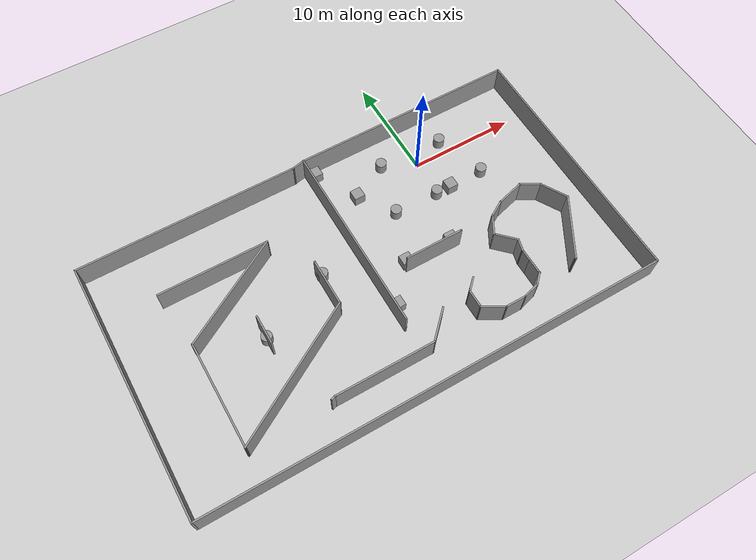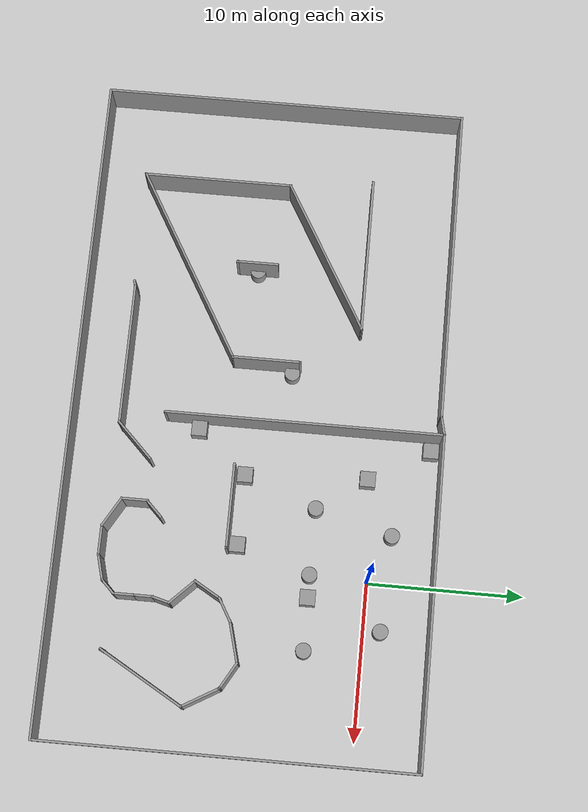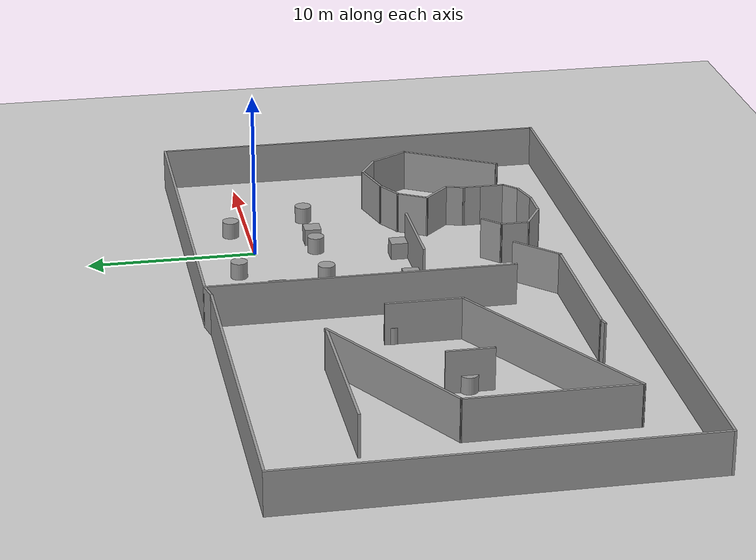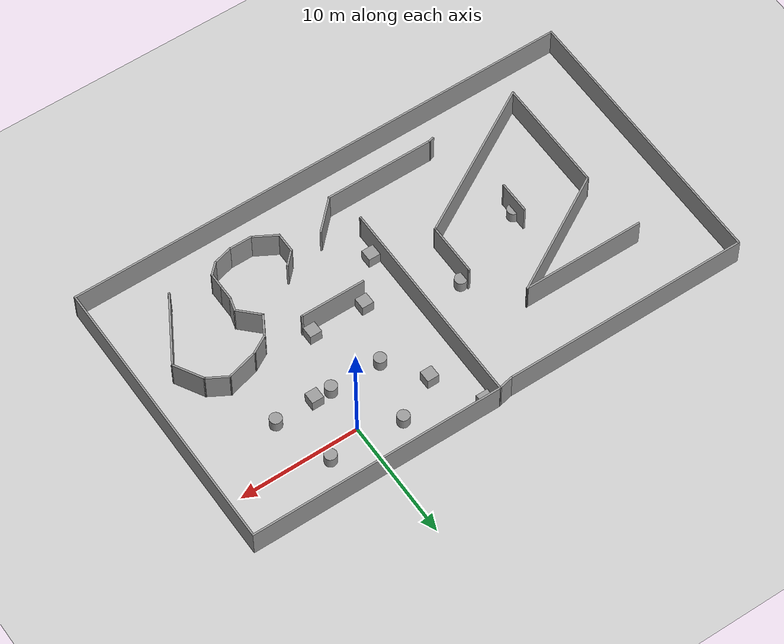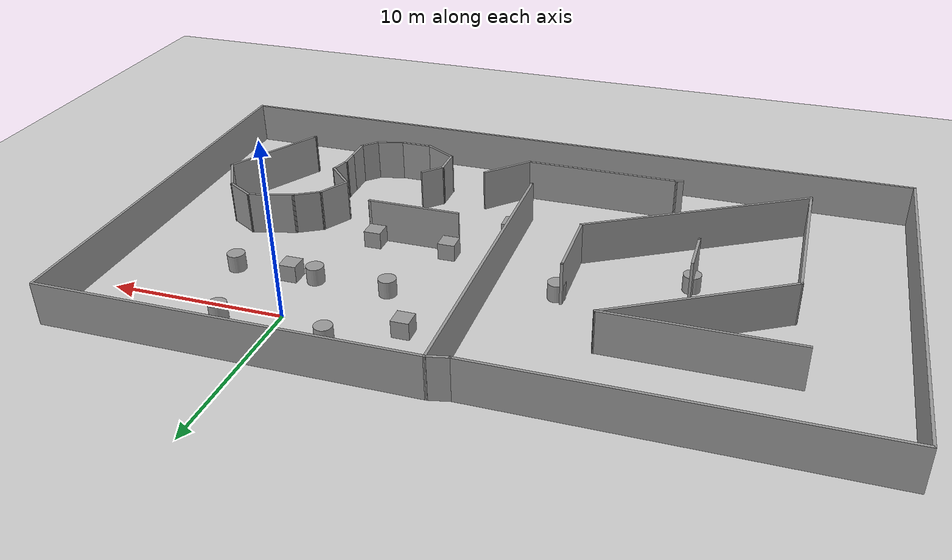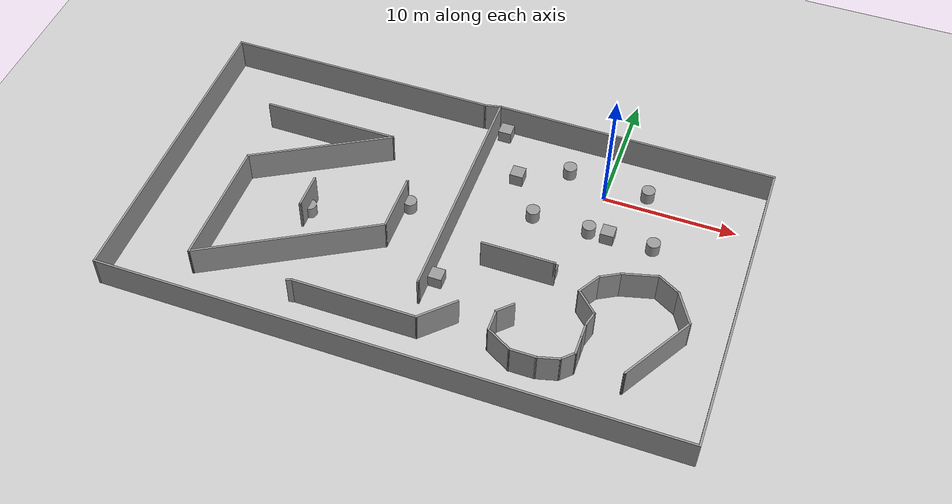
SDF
<sdf version="1.7">
 <world name="default">
  <light name="sun" type="directional">
   <pose>0 0 10 0 -0 0</pose>
   <diffuse>0.8 0.8 0.8 1</diffuse>
   <specular>0.2 0.2 0.2 1</specular>
   <attenuation>
    <range>1000</range>
    <constant>0.9</constant>
    <linear>0.01</linear>
    <quadratic>0.001</quadratic>
   </attenuation>
   <direction>-0.5 0.1 -0.9</direction>
   <spot><inner_angle>0</inner_angle><outer_angle>0</outer_angle><falloff>0</falloff></spot>
  </light>
  <model name="ground_plane">
   <static>1</static>
   <link name="link">
    <collision name="collision">
     <geometry><plane><normal>0 0 1</normal><size>100 100</size></plane></geometry>
     <surface><friction><ode><mu>100</mu><mu2>50</mu2></ode></friction></surface>
    </collision>
    <visual name="visual">
     <cast_shadows>0</cast_shadows>
     <geometry><plane><normal>0 0 1</normal><size>100 100</size></plane></geometry>
     <material>
      <script><uri>file://media/materials/scripts/gazebo.material</uri><name>Gazebo/Grey</name></script>
     </material>
    </visual>
   </link>
  </model>
  <gravity>0 0 -9.8</gravity>
  <magnetic_field>6e-06 2.3e-05 -4.2e-05</magnetic_field>
  <atmosphere type="adiabatic"/>
  <physics type="ode">
   <max_step_size>0.001</max_step_size>
   <real_time_factor>1</real_time_factor>
   <real_time_update_rate>1000</real_time_update_rate>
  </physics>
  <scene><ambient>0.4 0.4 0.4 1</ambient><background>0.7 0.7 0.7 1</background><shadows>1</shadows></scene>
  <audio><device>default</device></audio>
  <spherical_coordinates>
   <surface_model>EARTH_WGS84</surface_model>
   <latitude_deg>0</latitude_deg>
   <longitude_deg>0</longitude_deg>
   <elevation>0</elevation>
   <heading_deg>0</heading_deg>
  </spherical_coordinates>
  <light name="user_directional_light_0" type="directional">
   <pose>2.19345 2.7816 1 0 -0 0</pose>
   <diffuse>0.5 0.5 0.5 1</diffuse>
   <specular>0.1 0.1 0.1 1</specular>
   <direction>0.1 0.1 -0.9</direction>
   <attenuation>
    <range>20</range>
    <constant>0.5</constant>
    <linear>0.01</linear>
    <quadratic>0.001</quadratic>
   </attenuation>
   <spot><inner_angle>0</inner_angle><outer_angle>0</outer_angle><falloff>0</falloff></spot>
  </light>
  <light name="user_point_light_0" type="point">
   <pose>0.00602 0.042738 1 0 -0 0</pose>
   <diffuse>0.5 0.5 0.5 1</diffuse>
   <specular>0.1 0.1 0.1 1</specular>
   <attenuation>
    <range>20</range>
    <constant>0.5</constant>
    <linear>0.01</linear>
    <quadratic>0.001</quadratic>
   </attenuation>
   <cast_shadows>0</cast_shadows>
   <direction>0 0 -1</direction>
   <spot><inner_angle>0</inner_angle><outer_angle>0</outer_angle><falloff>0</falloff></spot>
  </light>
  <light name="user_directional_light_1" type="directional">
   <pose>8.20427 3.3882 1 0 -0 0</pose>
   <diffuse>0.5 0.5 0.5 1</diffuse>
   <specular>0.1 0.1 0.1 1</specular>
   <direction>0.1 0.1 -0.9</direction>
   <attenuation>
    <range>20</range>
    <constant>0.5</constant>
    <linear>0.01</linear>
    <quadratic>0.001</quadratic>
   </attenuation>
   <spot><inner_angle>0</inner_angle><outer_angle>0</outer_angle><falloff>0</falloff></spot>
  </light>
  <light name="user_directional_light_2" type="directional">
   <pose>-4.44235 2.83674 1 0 -0 0</pose>
   <diffuse>0.5 0.5 0.5 1</diffuse>
   <specular>0.1 0.1 0.1 1</specular>
   <direction>0.1 0.1 -0.9</direction>
   <attenuation>
    <range>20</range>
    <constant>0.5</constant>
    <linear>0.01</linear>
    <quadratic>0.001</quadratic>
   </attenuation>
   <spot><inner_angle>0</inner_angle><outer_angle>0</outer_angle><falloff>0</falloff></spot>
  </light>
  <light name="user_directional_light_3" type="directional">
   <pose>2.24863 -3.56007 1 0 -0 0</pose>
   <diffuse>0.5 0.5 0.5 1</diffuse>
   <specular>0.1 0.1 0.1 1</specular>
   <direction>0.1 0.1 -0.9</direction>
   <attenuation>
    <range>20</range>
    <constant>0.5</constant>
    <linear>0.01</linear>
    <quadratic>0.001</quadratic>
   </attenuation>
   <spot><inner_angle>0</inner_angle><outer_angle>0</outer_angle><falloff>0</falloff></spot>
  </light>
  <light name="user_directional_light_4" type="directional">
   <pose>2.43241 9.1233 1 0 -0 0</pose>
   <diffuse>0.5 0.5 0.5 1</diffuse>
   <specular>0.1 0.1 0.1 1</specular>
   <direction>0.1 0.1 -0.9</direction>
   <attenuation>
    <range>20</range>
    <constant>0.5</constant>
    <linear>0.01</linear>
    <quadratic>0.001</quadratic>
   </attenuation>
   <spot><inner_angle>0</inner_angle><outer_angle>0</outer_angle><falloff>0</falloff></spot>
  </light>
  <model name="Untitled">
   <pose>-9.90594 -7.76724 0 0 -0 0</pose>
   <link name="Wall_1">
    <collision name="Wall_1_Collision">
     <geometry><box><size>21.25 0.15 2.5</size></box></geometry>
     <pose>0 0 1.25 0 -0 0</pose>
    </collision>
    <visual name="Wall_1_Visual">
     <pose>0 0 1.25 0 -0 0</pose>
     <geometry><box><size>21.25 0.15 2.5</size></box></geometry>
     <material>
      <script><uri>file://media/materials/scripts/gazebo.material</uri><name>Gazebo/Grey</name></script>
      <ambient>1 1 1 1</ambient>
     </material>
     <meta><layer>0</layer></meta>
    </visual>
    <pose>10.875 11.9179 0 0 -0 0</pose>
   </link>
   <link name="Wall_11">
    <collision name="Wall_11_Collision">
     <geometry><box><size>10.25 0.15 2.5</size></box></geometry>
     <pose>0 0 1.25 0 -0 0</pose>
    </collision>
    <visual name="Wall_11_Visual">
     <pose>0 0 1.25 0 -0 0</pose>
     <geometry><box><size>10.25 0.15 2.5</size></box></geometry>
     <material>
      <script><uri>file://media/materials/scripts/gazebo.material</uri><name>Gazebo/Grey</name></script>
      <ambient>1 1 1 1</ambient>
     </material>
     <meta><layer>0</layer></meta>
    </visual>
    <pose>-11.3016 6.11885 0 0 -0 0</pose>
   </link>
   <link name="Wall_12">
    <collision name="Wall_12_Collision">
     <geometry><box><size>11 0.15 2.5</size></box></geometry>
     <pose>0 0 1.25 0 -0 0</pose>
    </collision>
    <visual name="Wall_12_Visual">
     <pose>0 0 1.25 0 -0 0</pose>
     <geometry><box><size>11 0.15 2.5</size></box></geometry>
     <material>
      <script><uri>file://media/materials/scripts/gazebo.material</uri><name>Gazebo/Grey</name></script>
      <ambient>1 1 1 1</ambient>
     </material>
     <meta><layer>0</layer></meta>
    </visual>
    <pose>-10.9498 3.40634 0 0 -0 -2.61799</pose>
   </link>
   <link name="Wall_13">
    <collision name="Wall_13_Collision">
     <geometry><box><size>9.75 0.15 2.5</size></box></geometry>
     <pose>0 0 1.25 0 -0 0</pose>
    </collision>
    <visual name="Wall_13_Visual">
     <pose>0 0 1.25 0 -0 0</pose>
     <geometry><box><size>9.75 0.15 2.5</size></box></geometry>
     <material>
      <script><uri>file://media/materials/scripts/gazebo.material</uri><name>Gazebo/Grey</name></script>
      <ambient>1 1 1 1</ambient>
     </material>
     <meta><layer>0</layer></meta>
    </visual>
    <pose>-15.6479 -4.10616 0 0 -0 -1.5708</pose>
   </link>
   <link name="Wall_14">
    <collision name="Wall_14_Collision">
     <geometry><box><size>14 0.15 2.5</size></box></geometry>
     <pose>0 0 1.25 0 -0 0</pose>
    </collision>
    <visual name="Wall_14_Visual">
     <pose>0 0 1.25 0 -0 0</pose>
     <geometry><box><size>14 0.15 2.5</size></box></geometry>
     <material>
      <script><uri>file://media/materials/scripts/gazebo.material</uri><name>Gazebo/Grey</name></script>
      <ambient>1 1 1 1</ambient>
     </material>
     <meta><layer>0</layer></meta>
    </visual>
    <pose>-9.65072 -5.44365 0 0 -0 0.523599</pose>
   </link>
   <link name="Wall_15">
    <collision name="Wall_15_Collision">
     <geometry><box><size>4.5 0.15 2.5</size></box></geometry>
     <pose>0 0 1.25 0 -0 0</pose>
    </collision>
    <visual name="Wall_15_Visual">
     <pose>0 0 1.25 0 -0 0</pose>
     <geometry><box><size>4.5 0.15 2.5</size></box></geometry>
     <material>
      <script><uri>file://media/materials/scripts/gazebo.material</uri><name>Gazebo/Grey</name></script>
      <ambient>1 1 1 1</ambient>
     </material>
     <meta><layer>0</layer></meta>
    </visual>
    <pose>-3.65349 0.193846 0 0 -0 1.5708</pose>
   </link>
   <link name="Wall_16">
    <collision name="Wall_16_Collision">
     <geometry><box><size>0.16 0.15 2.5</size></box></geometry>
     <pose>0 0 1.25 0 -0 0</pose>
    </collision>
    <visual name="Wall_16_Visual">
     <pose>0 0 1.25 0 -0 0</pose>
     <geometry><box><size>0.16 0.15 2.5</size></box></geometry>
     <material>
      <script><uri>file://media/materials/scripts/gazebo.material</uri><name>Gazebo/Grey</name></script>
      <ambient>1 1 1 1</ambient>
     </material>
     <meta><layer>0</layer></meta>
    </visual>
    <pose>-3.64849 2.36885 0 0 -0 0</pose>
   </link>
   <link name="Wall_18">
    <collision name="Wall_18_Collision">
     <geometry><box><size>2.75 0.15 2.5</size></box></geometry>
     <pose>0 0 1.25 0 -0 0</pose>
    </collision>
    <visual name="Wall_18_Visual">
     <pose>0 0 1.25 0 -0 0</pose>
     <geometry><box><size>2.75 0.15 2.5</size></box></geometry>
     <material>
      <script><uri>file://media/materials/scripts/gazebo.material</uri><name>Gazebo/Grey</name></script>
      <ambient>1 1 1 1</ambient>
     </material>
     <meta><layer>0</layer></meta>
    </visual>
    <pose>-10.11 -0.992237 0 0 -0 -1.5708</pose>
   </link>
   <link name="Wall_19">
    <collision name="Wall_19_Collision">
     <geometry><box><size>0.15 0.15 2.5</size></box></geometry>
     <pose>0 0 1.25 0 -0 0</pose>
    </collision>
    <visual name="Wall_19_Visual">
     <pose>0 0 1.25 0 -0 0</pose>
     <geometry><box><size>0.15 0.15 2.5</size></box></geometry>
     <material>
      <script><uri>file://media/materials/scripts/gazebo.material</uri><name>Gazebo/Grey</name></script>
      <ambient>1 1 1 1</ambient>
     </material>
     <meta><layer>0</layer></meta>
    </visual>
    <pose>-10.11 -2.29224 0 0 -0 0</pose>
   </link>
   <link name="Wall_2">
    <collision name="Wall_2_Collision">
     <geometry><box><size>24 0.15 2.5</size></box></geometry>
     <pose>0 0 1.25 0 -0 0</pose>
    </collision>
    <visual name="Wall_2_Visual">
     <pose>0 0 1.25 0 -0 0</pose>
     <geometry><box><size>24 0.15 2.5</size></box></geometry>
     <material>
      <script><uri>file://media/materials/scripts/gazebo.material</uri><name>Gazebo/Grey</name></script>
      <ambient>1 1 1 1</ambient>
     </material>
     <meta><layer>0</layer></meta>
    </visual>
    <pose>21.425 -0.007109 0 0 -0 -1.5708</pose>
   </link>
   <link name="Wall_21">
    <collision name="Wall_21_Collision">
     <geometry><box><size>1.5 0.15 2.5</size></box></geometry>
     <pose>0 0 1.25 0 -0 0</pose>
    </collision>
    <visual name="Wall_21_Visual">
     <pose>0 0 1.25 0 -0 0</pose>
     <geometry><box><size>1.5 0.15 2.5</size></box></geometry>
     <material>
      <script><uri>file://media/materials/scripts/gazebo.material</uri><name>Gazebo/Grey</name></script>
      <ambient>1 1 1 1</ambient>
     </material>
     <meta><layer>0</layer></meta>
    </visual>
    <pose>6.63069 -5.98062 0 0 -0 -2.35619</pose>
   </link>
   <link name="Wall_22">
    <collision name="Wall_22_Collision">
     <geometry><box><size>1.75 0.15 2.5</size></box></geometry>
     <pose>0 0 1.25 0 -0 0</pose>
    </collision>
    <visual name="Wall_22_Visual">
     <pose>0 0 1.25 0 -0 0</pose>
     <geometry><box><size>1.75 0.15 2.5</size></box></geometry>
     <material>
      <script><uri>file://media/materials/scripts/gazebo.material</uri><name>Gazebo/Grey</name></script>
      <ambient>1 1 1 1</ambient>
     </material>
     <meta><layer>0</layer></meta>
    </visual>
    <pose>6.15339 -7.25791 0 0 -0 -1.5708</pose>
   </link>
   <link name="Wall_23">
    <collision name="Wall_23_Collision">
     <geometry><box><size>2.25 0.15 2.5</size></box></geometry>
     <pose>0 0 1.25 0 -0 0</pose>
    </collision>
    <visual name="Wall_23_Visual">
     <pose>0 0 1.25 0 -0 0</pose>
     <geometry><box><size>2.25 0.15 2.5</size></box></geometry>
     <material>
      <script><uri>file://media/materials/scripts/gazebo.material</uri><name>Gazebo/Grey</name></script>
      <ambient>1 1 1 1</ambient>
     </material>
     <meta><layer>0</layer></meta>
    </visual>
    <pose>7.06272 -8.58291 0 0 -0 -0.523599</pose>
   </link>
   <link name="Wall_24">
    <collision name="Wall_24_Collision">
     <geometry><box><size>2 0.15 2.5</size></box></geometry>
     <pose>0 0 1.25 0 -0 0</pose>
    </collision>
    <visual name="Wall_24_Visual">
     <pose>0 0 1.25 0 -0 0</pose>
     <geometry><box><size>2 0.15 2.5</size></box></geometry>
     <material>
      <script><uri>file://media/materials/scripts/gazebo.material</uri><name>Gazebo/Grey</name></script>
      <ambient>1 1 1 1</ambient>
     </material>
     <meta><layer>0</layer></meta>
    </visual>
    <pose>8.89705 -9.10791 0 0 -0 0</pose>
   </link>
   <link name="Wall_25">
    <collision name="Wall_25_Collision">
     <geometry><box><size>1.75 0.15 2.5</size></box></geometry>
     <pose>0 0 1.25 0 -0 0</pose>
    </collision>
    <visual name="Wall_25_Visual">
     <pose>0 0 1.25 0 -0 0</pose>
     <geometry><box><size>1.75 0.15 2.5</size></box></geometry>
     <material>
      <script><uri>file://media/materials/scripts/gazebo.material</uri><name>Gazebo/Grey</name></script>
      <ambient>1 1 1 1</ambient>
     </material>
     <meta><layer>0</layer></meta>
    </visual>
    <pose>10.5948 -8.90086 0 0 -0 0.261799</pose>
   </link>
   <link name="Wall_26">
    <collision name="Wall_26_Collision">
     <geometry><box><size>1.25 0.15 2.5</size></box></geometry>
     <pose>0 0 1.25 0 -0 0</pose>
    </collision>
    <visual name="Wall_26_Visual">
     <pose>0 0 1.25 0 -0 0</pose>
     <geometry><box><size>1.25 0.15 2.5</size></box></geometry>
     <material>
      <script><uri>file://media/materials/scripts/gazebo.material</uri><name>Gazebo/Grey</name></script>
      <ambient>1 1 1 1</ambient>
     </material>
     <meta><layer>0</layer></meta>
    </visual>
    <pose>11.7564 -8.3049 0 0 -0 0.785398</pose>
   </link>
   <link name="Wall_27">
    <collision name="Wall_27_Collision">
     <geometry><box><size>1.5 0.15 2.5</size></box></geometry>
     <pose>0 0 1.25 0 -0 0</pose>
    </collision>
    <visual name="Wall_27_Visual">
     <pose>0 0 1.25 0 -0 0</pose>
     <geometry><box><size>1.5 0.15 2.5</size></box></geometry>
     <material>
      <script><uri>file://media/materials/scripts/gazebo.material</uri><name>Gazebo/Grey</name></script>
      <ambient>1 1 1 1</ambient>
     </material>
     <meta><layer>0</layer></meta>
    </visual>
    <pose>12.1453 -7.24099 0 0 -0 1.5708</pose>
   </link>
   <link name="Wall_28">
    <collision name="Wall_28_Collision">
     <geometry><box><size>1.25 0.15 2.5</size></box></geometry>
     <pose>0 0 1.25 0 -0 0</pose>
    </collision>
    <visual name="Wall_28_Visual">
     <pose>0 0 1.25 0 -0 0</pose>
     <geometry><box><size>1.25 0.15 2.5</size></box></geometry>
     <material>
      <script><uri>file://media/materials/scripts/gazebo.material</uri><name>Gazebo/Grey</name></script>
      <ambient>1 1 1 1</ambient>
     </material>
     <meta><layer>0</layer></meta>
    </visual>
    <pose>12.1453 -6.01599 0 0 -0 1.5708</pose>
   </link>
   <link name="Wall_29">
    <collision name="Wall_29_Collision">
     <geometry><box><size>1.25 0.15 2.5</size></box></geometry>
     <pose>0 0 1.25 0 -0 0</pose>
    </collision>
    <visual name="Wall_29_Visual">
     <pose>0 0 1.25 0 -0 0</pose>
     <geometry><box><size>1.25 0.15 2.5</size></box></geometry>
     <material>
      <script><uri>file://media/materials/scripts/gazebo.material</uri><name>Gazebo/Grey</name></script>
      <ambient>1 1 1 1</ambient>
     </material>
     <meta><layer>0</layer></meta>
    </visual>
    <pose>12.2877 -4.93473 0 0 -0 1.309</pose>
   </link>
   <link name="Wall_3">
    <collision name="Wall_3_Collision">
     <geometry><box><size>43 0.15 2.5</size></box></geometry>
     <pose>0 0 1.25 0 -0 0</pose>
    </collision>
    <visual name="Wall_3_Visual">
     <pose>0 0 1.25 0 -0 0</pose>
     <geometry><box><size>43 0.15 2.5</size></box></geometry>
     <material>
      <script><uri>file://media/materials/scripts/gazebo.material</uri><name>Gazebo/Grey</name></script>
      <ambient>1 1 1 1</ambient>
     </material>
     <meta><layer>0</layer></meta>
    </visual>
    <pose>-0 -11.9321 0 0 -0 3.14159</pose>
   </link>
   <link name="Wall_30">
    <collision name="Wall_30_Collision">
     <geometry><box><size>2.25 0.15 2.5</size></box></geometry>
     <pose>0 0 1.25 0 -0 0</pose>
    </collision>
    <visual name="Wall_30_Visual">
     <pose>0 0 1.25 0 -0 0</pose>
     <geometry><box><size>2.25 0.15 2.5</size></box></geometry>
     <material>
      <script><uri>file://media/materials/scripts/gazebo.material</uri><name>Gazebo/Grey</name></script>
      <ambient>1 1 1 1</ambient>
     </material>
     <meta><layer>0</layer></meta>
    </visual>
    <pose>11.6876 -3.661 0 0 -0 2.35619</pose>
   </link>
   <link name="Wall_31">
    <collision name="Wall_31_Collision">
     <geometry><box><size>2 0.15 2.5</size></box></geometry>
     <pose>0 0 1.25 0 -0 0</pose>
    </collision>
    <visual name="Wall_31_Visual">
     <pose>0 0 1.25 0 -0 0</pose>
     <geometry><box><size>2 0.15 2.5</size></box></geometry>
     <material>
      <script><uri>file://media/materials/scripts/gazebo.material</uri><name>Gazebo/Grey</name></script>
      <ambient>1 1 1 1</ambient>
     </material>
     <meta><layer>0</layer></meta>
    </visual>
    <pose>11.4076 -2.11747 0 0 -0 1.0472</pose>
   </link>
   <link name="Wall_32">
    <collision name="Wall_32_Collision">
     <geometry><box><size>1.75 0.15 2.5</size></box></geometry>
     <pose>0 0 1.25 0 -0 0</pose>
    </collision>
    <visual name="Wall_32_Visual">
     <pose>0 0 1.25 0 -0 0</pose>
     <geometry><box><size>1.75 0.15 2.5</size></box></geometry>
     <material>
      <script><uri>file://media/materials/scripts/gazebo.material</uri><name>Gazebo/Grey</name></script>
      <ambient>1 1 1 1</ambient>
     </material>
     <meta><layer>0</layer></meta>
    </visual>
    <pose>12.5629 -0.916396 0 0 -0 0.523599</pose>
   </link>
   <link name="Wall_33">
    <collision name="Wall_33_Collision">
     <geometry><box><size>2.75 0.15 2.5</size></box></geometry>
     <pose>0 0 1.25 0 -0 0</pose>
    </collision>
    <visual name="Wall_33_Visual">
     <pose>0 0 1.25 0 -0 0</pose>
     <geometry><box><size>2.75 0.15 2.5</size></box></geometry>
     <material>
      <script><uri>file://media/materials/scripts/gazebo.material</uri><name>Gazebo/Grey</name></script>
      <ambient>1 1 1 1</ambient>
     </material>
     <meta><layer>0</layer></meta>
    </visual>
    <pose>14.5115 -0.179932 0 0 -0 0.261799</pose>
   </link>
   <link name="Wall_34">
    <collision name="Wall_34_Collision">
     <geometry><box><size>2 0.15 2.5</size></box></geometry>
     <pose>0 0 1.25 0 -0 0</pose>
    </collision>
    <visual name="Wall_34_Visual">
     <pose>0 0 1.25 0 -0 0</pose>
     <geometry><box><size>2 0.15 2.5</size></box></geometry>
     <material>
      <script><uri>file://media/materials/scripts/gazebo.material</uri><name>Gazebo/Grey</name></script>
      <ambient>1 1 1 1</ambient>
     </material>
     <meta><layer>0</layer></meta>
    </visual>
    <pose>16.5682 -0.305967 0 0 -0 -0.523599</pose>
   </link>
   <link name="Wall_35">
    <collision name="Wall_35_Collision">
     <geometry><box><size>2.75 0.15 2.5</size></box></geometry>
     <pose>0 0 1.25 0 -0 0</pose>
    </collision>
    <visual name="Wall_35_Visual">
     <pose>0 0 1.25 0 -0 0</pose>
     <geometry><box><size>2.75 0.15 2.5</size></box></geometry>
     <material>
      <script><uri>file://media/materials/scripts/gazebo.material</uri><name>Gazebo/Grey</name></script>
      <ambient>1 1 1 1</ambient>
     </material>
     <meta><layer>0</layer></meta>
    </visual>
    <pose>18.0193 -1.8943 0 0 -0 -1.0472</pose>
   </link>
   <link name="Wall_36">
    <collision name="Wall_36_Collision">
     <geometry><box><size>6.25 0.15 2.5</size></box></geometry>
     <pose>0 0 1.25 0 -0 0</pose>
    </collision>
    <visual name="Wall_36_Visual">
     <pose>0 0 1.25 0 -0 0</pose>
     <geometry><box><size>6.25 0.15 2.5</size></box></geometry>
     <material>
      <script><uri>file://media/materials/scripts/gazebo.material</uri><name>Gazebo/Grey</name></script>
      <ambient>1 1 1 1</ambient>
     </material>
     <meta><layer>0</layer></meta>
    </visual>
    <pose>17.1443 -5.66151 0 0 -0 -2.0944</pose>
   </link>
   <link name="Wall_37">
    <collision name="Wall_37_Collision">
     <geometry><box><size>0.16 0.15 2.5</size></box></geometry>
     <pose>0 0 1.25 0 -0 0</pose>
    </collision>
    <visual name="Wall_37_Visual">
     <pose>0 0 1.25 0 -0 0</pose>
     <geometry><box><size>0.16 0.15 2.5</size></box></geometry>
     <material>
      <script><uri>file://media/materials/scripts/gazebo.material</uri><name>Gazebo/Grey</name></script>
      <ambient>1 1 1 1</ambient>
     </material>
     <meta><layer>0</layer></meta>
    </visual>
    <pose>15.6243 -8.30289 0 0 -0 0</pose>
   </link>
   <link name="Wall_39">
    <collision name="Wall_39_Collision">
     <geometry><box><size>5.5 0.15 2.5</size></box></geometry>
     <pose>0 0 1.25 0 -0 0</pose>
    </collision>
    <visual name="Wall_39_Visual">
     <pose>0 0 1.25 0 -0 0</pose>
     <geometry><box><size>5.5 0.15 2.5</size></box></geometry>
     <material>
      <script><uri>file://media/materials/scripts/gazebo.material</uri><name>Gazebo/Grey</name></script>
      <ambient>1 1 1 1</ambient>
     </material>
     <meta><layer>0</layer></meta>
    </visual>
    <pose>6.01655 -1.19881 0 0 -0 0</pose>
   </link>
   <link name="Wall_4">
    <collision name="Wall_4_Collision">
     <geometry><box><size>23.75 0.15 2.5</size></box></geometry>
     <pose>0 0 1.25 0 -0 0</pose>
    </collision>
    <visual name="Wall_4_Visual">
     <pose>0 0 1.25 0 -0 0</pose>
     <geometry><box><size>23.75 0.15 2.5</size></box></geometry>
     <material>
      <script><uri>file://media/materials/scripts/gazebo.material</uri><name>Gazebo/Grey</name></script>
      <ambient>1 1 1 1</ambient>
     </material>
     <meta><layer>0</layer></meta>
    </visual>
    <pose>-21.425 -0.132109 0 0 -0 1.5708</pose>
   </link>
   <link name="Wall_40">
    <collision name="Wall_40_Collision">
     <geometry><box><size>0.15 0.15 2.5</size></box></geometry>
     <pose>0 0 1.25 0 -0 0</pose>
    </collision>
    <visual name="Wall_40_Visual">
     <pose>0 0 1.25 0 -0 0</pose>
     <geometry><box><size>0.15 0.15 2.5</size></box></geometry>
     <material>
      <script><uri>file://media/materials/scripts/gazebo.material</uri><name>Gazebo/Grey</name></script>
      <ambient>1 1 1 1</ambient>
     </material>
     <meta><layer>0</layer></meta>
    </visual>
    <pose>8.69155 -1.19881 0 0 -0 0</pose>
   </link>
   <link name="Wall_42">
    <collision name="Wall_42_Collision">
     <geometry><box><size>3.25 0.15 2.5</size></box></geometry>
     <pose>0 0 1.25 0 -0 0</pose>
    </collision>
    <visual name="Wall_42_Visual">
     <pose>0 0 1.25 0 -0 0</pose>
     <geometry><box><size>3.25 0.15 2.5</size></box></geometry>
     <material>
      <script><uri>file://media/materials/scripts/gazebo.material</uri><name>Gazebo/Grey</name></script>
      <ambient>1 1 1 1</ambient>
     </material>
     <meta><layer>0</layer></meta>
    </visual>
    <pose>2.35314 -7.67546 0 0 -0 -2.35619</pose>
   </link>
   <link name="Wall_43">
    <collision name="Wall_43_Collision">
     <geometry><box><size>9.25 0.15 2.5</size></box></geometry>
     <pose>0 0 1.25 0 -0 0</pose>
    </collision>
    <visual name="Wall_43_Visual">
     <pose>0 0 1.25 0 -0 0</pose>
     <geometry><box><size>9.25 0.15 2.5</size></box></geometry>
     <material>
      <script><uri>file://media/materials/scripts/gazebo.material</uri><name>Gazebo/Grey</name></script>
      <ambient>1 1 1 1</ambient>
     </material>
     <meta><layer>0</layer></meta>
    </visual>
    <pose>-3.29287 -8.77148 0 0 -0 3.14159</pose>
   </link>
   <link name="Wall_44">
    <collision name="Wall_44_Collision">
     <geometry><box><size>0.5 0.15 2.5</size></box></geometry>
     <pose>0 0 1.25 0 -0 0</pose>
    </collision>
    <visual name="Wall_44_Visual">
     <pose>0 0 1.25 0 -0 0</pose>
     <geometry><box><size>0.5 0.15 2.5</size></box></geometry>
     <material>
      <script><uri>file://media/materials/scripts/gazebo.material</uri><name>Gazebo/Grey</name></script>
      <ambient>1 1 1 1</ambient>
     </material>
     <meta><layer>0</layer></meta>
    </visual>
    <pose>-8.01191 -8.81677 0 0 -0 -2.87979</pose>
   </link>
   <link name="Wall_5">
    <collision name="Wall_5_Collision">
     <geometry><box><size>20.75 0.15 2.5</size></box></geometry>
     <pose>0 0 1.25 0 -0 0</pose>
    </collision>
    <visual name="Wall_5_Visual">
     <pose>0 0 1.25 0 -0 0</pose>
     <geometry><box><size>20.75 0.15 2.5</size></box></geometry>
     <material>
      <script><uri>file://media/materials/scripts/gazebo.material</uri><name>Gazebo/Grey</name></script>
      <ambient>1 1 1 1</ambient>
     </material>
     <meta><layer>0</layer></meta>
    </visual>
    <pose>-11.125 11.6679 0 0 -0 0</pose>
   </link>
   <link name="Wall_6">
    <collision name="Wall_6_Collision">
     <geometry><box><size>1.32686 0.15 2.5</size></box></geometry>
     <pose>0 0 1.25 0 -0 0</pose>
    </collision>
    <visual name="Wall_6_Visual">
     <pose>0 0 1.25 0 -0 0</pose>
     <geometry><box><size>1.32686 0.15 2.5</size></box></geometry>
     <material>
      <script><uri>file://media/materials/scripts/gazebo.material</uri><name>Gazebo/Grey</name></script>
      <ambient>1 1 1 1</ambient>
     </material>
     <meta><layer>0</layer></meta>
    </visual>
    <pose>-0.25 11.7929 0 0 -0 0.214061</pose>
   </link>
   <link name="Wall_7">
    <collision name="Wall_7_Collision">
     <geometry><box><size>18 0.15 2.5</size></box></geometry>
     <pose>0 0 1.25 0 -0 0</pose>
    </collision>
    <visual name="Wall_7_Visual">
     <pose>0 0 1.25 0 -0 0</pose>
     <geometry><box><size>18 0.15 2.5</size></box></geometry>
     <material>
      <script><uri>file://media/materials/scripts/gazebo.material</uri><name>Gazebo/Grey</name></script>
      <ambient>1 1 1 1</ambient>
     </material>
     <meta><layer>0</layer></meta>
    </visual>
    <pose>0.324999 2.99289 0 0 -0 -1.5708</pose>
   </link>
   <link name="Wall_8">
    <collision name="Wall_8_Collision">
     <geometry><box><size>0.16 0.15 2.5</size></box></geometry>
     <pose>0 0 1.25 0 -0 0</pose>
    </collision>
    <visual name="Wall_8_Visual">
     <pose>0 0 1.25 0 -0 0</pose>
     <geometry><box><size>0.16 0.15 2.5</size></box></geometry>
     <material>
      <script><uri>file://media/materials/scripts/gazebo.material</uri><name>Gazebo/Grey</name></script>
      <ambient>1 1 1 1</ambient>
     </material>
     <meta><layer>0</layer></meta>
    </visual>
    <pose>0.329999 -5.93211 0 0 -0 0</pose>
   </link>
   <static>1</static>
  </model>
  <model name="unit_cylinder">
   <pose>-4.42742 -3.60019 0.499998 3e-06 -3e-06 0</pose>
   <link name="link">
    <inertial>
     <mass>1</mass>
     <inertia><ixx>0.145833</ixx><ixy>0</ixy><ixz>0</ixz><iyy>0.145833</iyy><iyz>0</iyz><izz>0.125</izz></inertia>
    </inertial>
    <collision name="collision">
     <geometry><cylinder><radius>0.5</radius><length>1</length></cylinder></geometry>
    </collision>
    <visual name="visual">
     <geometry><cylinder><radius>0.5</radius><length>1</length></cylinder></geometry>
     <material>
      <script><name>Gazebo/Grey</name><uri>file://media/materials/scripts/gazebo.material</uri></script>
     </material>
    </visual>
   </link>
  </model>
  <model name="unit_cylinder_0">
   <pose>-0.159853 -3.64559 0.499993 -3e-06 3e-06 0</pose>
   <link name="link">
    <inertial>
     <mass>1</mass>
     <inertia><ixx>0.145833</ixx><ixy>0</ixy><ixz>0</ixz><iyy>0.145833</iyy><iyz>0</iyz><izz>0.125</izz></inertia>
    </inertial>
    <collision name="collision">
     <geometry><cylinder><radius>0.5</radius><length>1</length></cylinder></geometry>
    </collision>
    <visual name="visual">
     <geometry><cylinder><radius>0.5</radius><length>1</length></cylinder></geometry>
     <material>
      <script><name>Gazebo/Grey</name><uri>file://media/materials/scripts/gazebo.material</uri></script>
     </material>
    </visual>
   </link>
  </model>
  <model name="unit_cylinder_1">
   <pose>4.62791 -3.61505 0.499998 3e-06 -3e-06 0</pose>
   <link name="link">
    <inertial>
     <mass>1</mass>
     <inertia><ixx>0.145833</ixx><ixy>0</ixy><ixz>0</ixz><iyy>0.145833</iyy><iyz>0</iyz><izz>0.125</izz></inertia>
    </inertial>
    <collision name="collision">
     <geometry><cylinder><radius>0.5</radius><length>1</length></cylinder></geometry>
    </collision>
    <visual name="visual">
     <geometry><cylinder><radius>0.5</radius><length>1</length></cylinder></geometry>
     <material>
      <script><name>Gazebo/Grey</name><uri>file://media/materials/scripts/gazebo.material</uri></script>
     </material>
    </visual>
   </link>
  </model>
  <model name="unit_cylinder_2">
   <pose>3.03824 1.09523 0.499992 -3e-06 3e-06 0</pose>
   <link name="link">
    <inertial>
     <mass>1</mass>
     <inertia><ixx>0.145833</ixx><ixy>0</ixy><ixz>0</ixz><iyy>0.145833</iyy><iyz>0</iyz><izz>0.125</izz></inertia>
    </inertial>
    <collision name="collision">
     <geometry><cylinder><radius>0.5</radius><length>1</length></cylinder></geometry>
    </collision>
    <visual name="visual">
     <geometry><cylinder><radius>0.5</radius><length>1</length></cylinder></geometry>
     <material>
      <script><name>Gazebo/Grey</name><uri>file://media/materials/scripts/gazebo.material</uri></script>
     </material>
    </visual>
   </link>
  </model>
  <model name="unit_cylinder_3">
   <pose>-3.07191 1.38036 0.499998 3e-06 -3e-06 0</pose>
   <link name="link">
    <inertial>
     <mass>1</mass>
     <inertia><ixx>0.145833</ixx><ixy>0</ixy><ixz>0</ixz><iyy>0.145833</iyy><iyz>0</iyz><izz>0.125</izz></inertia>
    </inertial>
    <collision name="collision">
     <geometry><cylinder><radius>0.5</radius><length>1</length></cylinder></geometry>
    </collision>
    <visual name="visual">
     <geometry><cylinder><radius>0.5</radius><length>1</length></cylinder></geometry>
     <material>
      <script><name>Gazebo/Grey</name><uri>file://media/materials/scripts/gazebo.material</uri></script>
     </material>
    </visual>
   </link>
  </model>
  <model name="unit_box">
   <pose>-6.6113 -0.435889 0.499995 -1e-05 -0 -0</pose>
   <link name="link">
    <inertial>
     <mass>1</mass>
     <inertia>
      <ixx>0.166667</ixx>
      <ixy>0</ixy>
      <ixz>0</ixz>
      <iyy>0.166667</iyy>
      <iyz>0</iyz>
      <izz>0.166667</izz>
     </inertia>
    </inertial>
    <collision name="collision"><geometry><box><size>1 1 1</size></box></geometry></collision>
    <visual name="visual">
     <geometry><box><size>1 1 1</size></box></geometry>
     <material>
      <script><name>Gazebo/Grey</name><uri>file://media/materials/scripts/gazebo.material</uri></script>
     </material>
    </visual>
   </link>
  </model>
  <model name="unit_box_0">
   <pose>-1.69844 -8.38051 0.499995 0 -1e-05 0</pose>
   <link name="link">
    <inertial>
     <mass>1</mass>
     <inertia>
      <ixx>0.166667</ixx>
      <ixy>0</ixy>
      <ixz>0</ixz>
      <iyy>0.166667</iyy>
      <iyz>0</iyz>
      <izz>0.166667</izz>
     </inertia>
    </inertial>
    <collision name="collision"><geometry><box><size>1 1 1</size></box></geometry></collision>
    <visual name="visual">
     <geometry><box><size>1 1 1</size></box></geometry>
     <material>
      <script><name>Gazebo/Grey</name><uri>file://media/materials/scripts/gazebo.material</uri></script>
     </material>
    </visual>
   </link>
  </model>
  <model name="unit_box_1">
   <pose>-6.22729 -8.31143 0.499995 -1e-05 -0 -0</pose>
   <link name="link">
    <inertial>
     <mass>1</mass>
     <inertia>
      <ixx>0.166667</ixx>
      <ixy>0</ixy>
      <ixz>0</ixz>
      <iyy>0.166667</iyy>
      <iyz>0</iyz>
      <izz>0.166667</izz>
     </inertia>
    </inertial>
    <collision name="collision"><geometry><box><size>1 1 1</size></box></geometry></collision>
    <visual name="visual">
     <geometry><box><size>1 1 1</size></box></geometry>
     <material>
      <script><name>Gazebo/Grey</name><uri>file://media/materials/scripts/gazebo.material</uri></script>
     </material>
    </visual>
   </link>
  </model>
  <model name="unit_box_2">
   <pose>-8.80804 3.48507 0.499995 0 -1e-05 0</pose>
   <link name="link">
    <inertial>
     <mass>1</mass>
     <inertia>
      <ixx>0.166667</ixx>
      <ixy>0</ixy>
      <ixz>0</ixz>
      <iyy>0.166667</iyy>
      <iyz>0</iyz>
      <izz>0.166667</izz>
     </inertia>
    </inertial>
    <collision name="collision"><geometry><box><size>1 1 1</size></box></geometry></collision>
    <visual name="visual">
     <geometry><box><size>1 1 1</size></box></geometry>
     <material>
      <script><name>Gazebo/Grey</name><uri>file://media/materials/scripts/gazebo.material</uri></script>
     </material>
    </visual>
   </link>
  </model>
  <model name="unit_box_3">
   <pose>-9.00553 -11.537 0.499995 -1e-05 -0 -0.000215</pose>
   <link name="link">
    <inertial>
     <mass>1</mass>
     <inertia>
      <ixx>0.166667</ixx>
      <ixy>0</ixy>
      <ixz>0</ixz>
      <iyy>0.166667</iyy>
      <iyz>0</iyz>
      <izz>0.166667</izz>
     </inertia>
    </inertial>
    <collision name="collision"><geometry><box><size>1 1 1</size></box></geometry></collision>
    <visual name="visual">
     <geometry><box><size>1 1 1</size></box></geometry>
     <material>
      <script><name>Gazebo/Grey</name><uri>file://media/materials/scripts/gazebo.material</uri></script>
     </material>
    </visual>
   </link>
  </model>
  <model name="unit_cylinder_4">
   <pose>-19.9631 -8.7357 0.499997 3e-06 4e-06 -0</pose>
   <link name="link">
    <inertial>
     <mass>1</mass>
     <inertia><ixx>0.145833</ixx><ixy>0</ixy><ixz>0</ixz><iyy>0.145833</iyy><iyz>0</iyz><izz>0.125</izz></inertia>
    </inertial>
    <collision name="collision">
     <geometry><cylinder><radius>0.5</radius><length>1</length></cylinder></geometry>
    </collision>
    <visual name="visual">
     <geometry><cylinder><radius>0.5</radius><length>1</length></cylinder></geometry>
     <material>
      <script><name>Gazebo/Grey</name><uri>file://media/materials/scripts/gazebo.material</uri></script>
     </material>
    </visual>
   </link>
  </model>
  <model name="unit_cylinder_5">
   <pose>-13.1809 -5.8782 0.5 0 -0 0</pose>
   <link name="link">
    <inertial>
     <mass>1</mass>
     <inertia><ixx>0.145833</ixx><ixy>0</ixy><ixz>0</ixz><iyy>0.145833</iyy><iyz>0</iyz><izz>0.125</izz></inertia>
    </inertial>
    <collision name="collision">
     <geometry><cylinder><radius>0.5</radius><length>1</length></cylinder></geometry>
    </collision>
    <visual name="visual">
     <geometry><cylinder><radius>0.5</radius><length>1</length></cylinder></geometry>
     <material>
      <script><name>Gazebo/Grey</name><uri>file://media/materials/scripts/gazebo.material</uri></script>
     </material>
    </visual>
   </link>
  </model>
  <model name="unit_box_4">
   <pose>1.28096 -3.64298 0.499995 0 1e-05 0</pose>
   <link name="link">
    <inertial>
     <mass>1</mass>
     <inertia>
      <ixx>0.166667</ixx>
      <ixy>0</ixy>
      <ixz>0</ixz>
      <iyy>0.166667</iyy>
      <iyz>0</iyz>
      <izz>0.166667</izz>
     </inertia>
    </inertial>
    <collision name="collision"><geometry><box><size>1 1 1</size></box></geometry></collision>
    <visual name="visual">
     <geometry><box><size>1 1 1</size></box></geometry>
     <material>
      <script><name>Gazebo/Grey</name><uri>file://media/materials/scripts/gazebo.material</uri></script>
     </material>
    </visual>
   </link>
  </model>
 </world>
</sdf>
